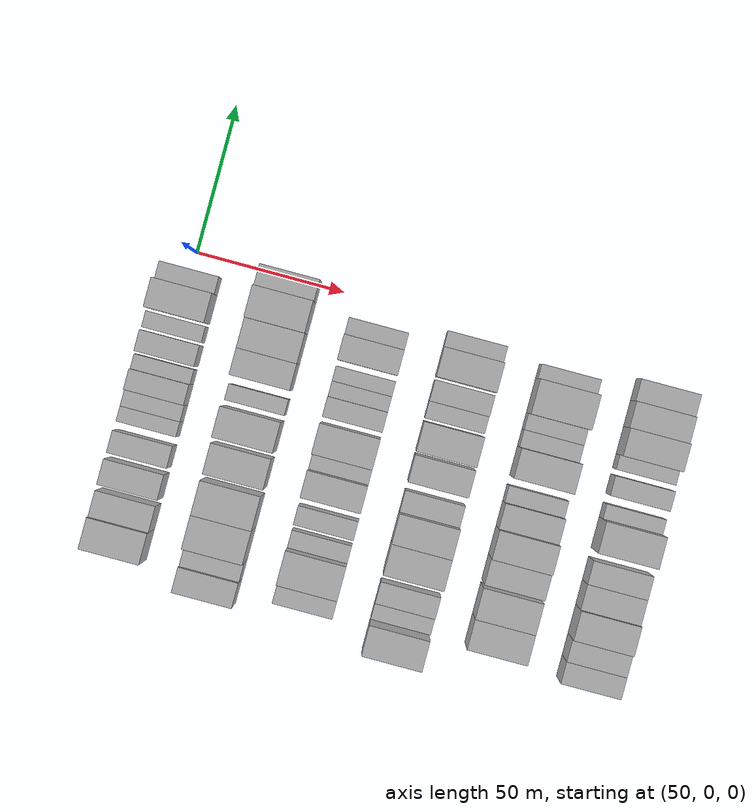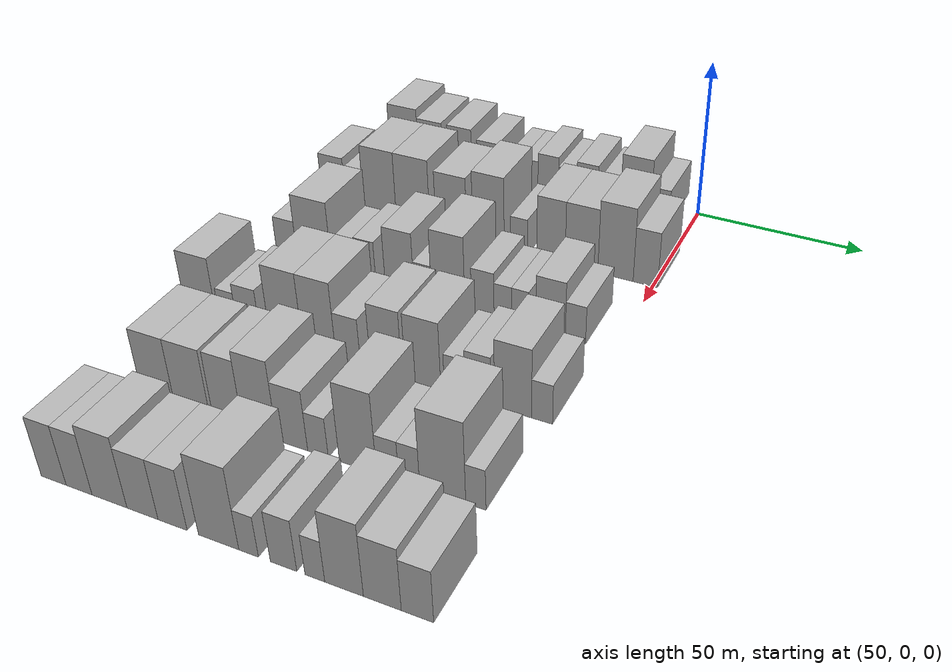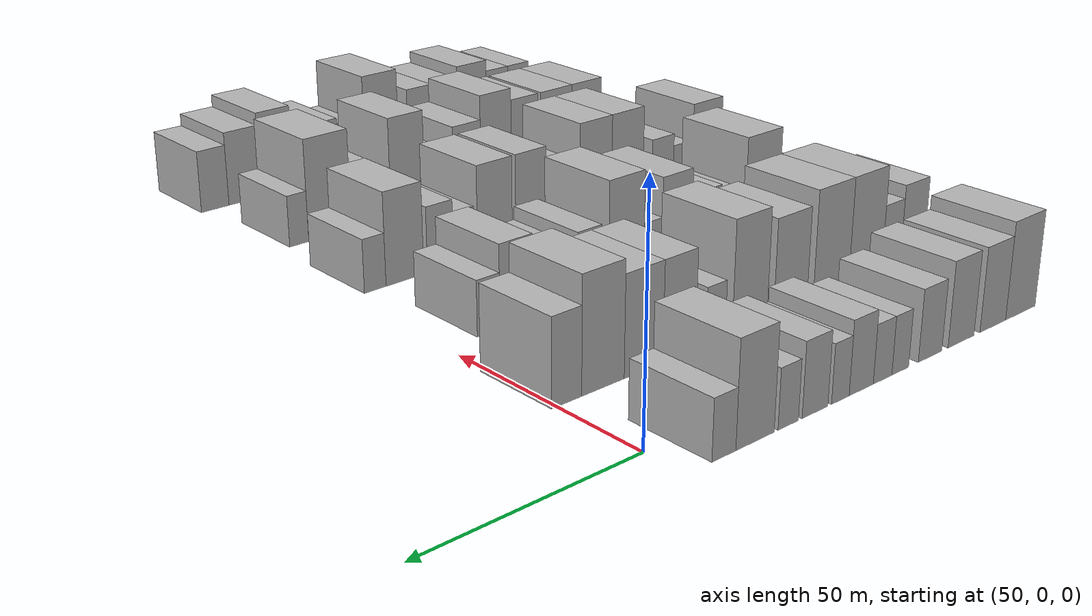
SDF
<sdf version="1.6">
 <world name="default">
  <model name="building_51">
   <static>1</static>
   <pose>50.0000 -96.4898 0 0.000000 0.000000 0.000000</pose>
   <link name="link">
    <pose>0 0 10.50 0 0 0</pose>
    <collision name="collision"><geometry><box><size>20.0000 10.4140 21.0000</size></box></geometry></collision>
    <visual name="visual">
     <cast_shadows>0</cast_shadows>
     <geometry><box><size>20.0000 10.4140 21.0000</size></box></geometry>
     <material>
      <script>
       <uri>model://HANNAS_wall/materials/scripts</uri>
       <uri>model://HANNAS_wall/materials/textures</uri>
       <name>vrc/HANNAS_wall</name>
      </script>
     </material>
    </visual>
   </link>
  </model>
  <model name="building_52">
   <static>1</static>
   <pose>50.0000 -86.9048 0 0.000000 0.000000 0.000000</pose>
   <link name="link">
    <pose>0 0 9.00 0 0 0</pose>
    <collision name="collision"><geometry><box><size>20.0000 8.7562 18.0000</size></box></geometry></collision>
    <visual name="visual">
     <cast_shadows>0</cast_shadows>
     <geometry><box><size>20.0000 8.7562 18.0000</size></box></geometry>
     <material>
      <script>
       <uri>model://HANNAS_wall/materials/scripts</uri>
       <uri>model://HANNAS_wall/materials/textures</uri>
       <name>vrc/HANNAS_wall</name>
      </script>
     </material>
    </visual>
   </link>
  </model>
  <model name="building_53">
   <static>1</static>
   <pose>50.0000 -76.2891 0 0.000000 0.000000 0.000000</pose>
   <link name="link">
    <pose>0 0 9.00 0 0 0</pose>
    <collision name="collision"><geometry><box><size>20.0000 8.4752 18.0000</size></box></geometry></collision>
    <visual name="visual">
     <cast_shadows>0</cast_shadows>
     <geometry><box><size>20.0000 8.4752 18.0000</size></box></geometry>
     <material>
      <script>
       <uri>model://HANNAS_wall/materials/scripts</uri>
       <uri>model://HANNAS_wall/materials/textures</uri>
       <name>vrc/HANNAS_wall</name>
      </script>
     </material>
    </visual>
   </link>
  </model>
  <model name="building_54">
   <static>1</static>
   <pose>50.0000 -66.3528 0 0.000000 0.000000 0.000000</pose>
   <link name="link">
    <pose>0 0 7.50 0 0 0</pose>
    <collision name="collision"><geometry><box><size>20.0000 7.3973 15.0000</size></box></geometry></collision>
    <visual name="visual">
     <cast_shadows>0</cast_shadows>
     <geometry><box><size>20.0000 7.3973 15.0000</size></box></geometry>
     <material>
      <script>
       <uri>model://HANNAS_wall/materials/scripts</uri>
       <uri>model://HANNAS_wall/materials/textures</uri>
       <name>vrc/HANNAS_wall</name>
      </script>
     </material>
    </visual>
   </link>
  </model>
  <model name="building_55">
   <static>1</static>
   <pose>50.0000 -57.1252 0 0.000000 0.000000 0.000000</pose>
   <link name="link">
    <pose>0 0 6.00 0 0 0</pose>
    <collision name="collision"><geometry><box><size>20.0000 5.0579 12.0000</size></box></geometry></collision>
    <visual name="visual">
     <cast_shadows>0</cast_shadows>
     <geometry><box><size>20.0000 5.0579 12.0000</size></box></geometry>
     <material>
      <script>
       <uri>model://HANNAS_wall/materials/scripts</uri>
       <uri>model://HANNAS_wall/materials/textures</uri>
       <name>vrc/HANNAS_wall</name>
      </script>
     </material>
    </visual>
   </link>
  </model>
  <model name="building_56">
   <static>1</static>
   <pose>50.0000 -51.8341 0 0.000000 0.000000 0.000000</pose>
   <link name="link">
    <pose>0 0 6.00 0 0 0</pose>
    <collision name="collision"><geometry><box><size>20.0000 5.5243 12.0000</size></box></geometry></collision>
    <visual name="visual">
     <cast_shadows>0</cast_shadows>
     <geometry><box><size>20.0000 5.5243 12.0000</size></box></geometry>
     <material>
      <script>
       <uri>model://HANNAS_wall/materials/scripts</uri>
       <uri>model://HANNAS_wall/materials/textures</uri>
       <name>vrc/HANNAS_wall</name>
      </script>
     </material>
    </visual>
   </link>
  </model>
  <model name="building_57">
   <static>1</static>
   <pose>50.0000 -45.5950 0 0.000000 0.000000 0.000000</pose>
   <link name="link">
    <pose>0 0 7.50 0 0 0</pose>
    <collision name="collision"><geometry><box><size>20.0000 6.9540 15.0000</size></box></geometry></collision>
    <visual name="visual">
     <cast_shadows>0</cast_shadows>
     <geometry><box><size>20.0000 6.9540 15.0000</size></box></geometry>
     <material>
      <script>
       <uri>model://HANNAS_wall/materials/scripts</uri>
       <uri>model://HANNAS_wall/materials/textures</uri>
       <name>vrc/HANNAS_wall</name>
      </script>
     </material>
    </visual>
   </link>
  </model>
  <model name="building_58">
   <static>1</static>
   <pose>50.0000 -39.6322 0 0.000000 0.000000 0.000000</pose>
   <link name="link">
    <pose>0 0 6.00 0 0 0</pose>
    <collision name="collision"><geometry><box><size>20.0000 4.9714 12.0000</size></box></geometry></collision>
    <visual name="visual">
     <cast_shadows>0</cast_shadows>
     <geometry><box><size>20.0000 4.9714 12.0000</size></box></geometry>
     <material>
      <script>
       <uri>model://HANNAS_wall/materials/scripts</uri>
       <uri>model://HANNAS_wall/materials/textures</uri>
       <name>vrc/HANNAS_wall</name>
      </script>
     </material>
    </visual>
   </link>
  </model>
  <model name="building_59">
   <static>1</static>
   <pose>50.0000 -32.6266 0 0.000000 0.000000 0.000000</pose>
   <link name="link">
    <pose>0 0 7.50 0 0 0</pose>
    <collision name="collision"><geometry><box><size>20.0000 7.0398 15.0000</size></box></geometry></collision>
    <visual name="visual">
     <cast_shadows>0</cast_shadows>
     <geometry><box><size>20.0000 7.0398 15.0000</size></box></geometry>
     <material>
      <script>
       <uri>model://HANNAS_wall/materials/scripts</uri>
       <uri>model://HANNAS_wall/materials/textures</uri>
       <name>vrc/HANNAS_wall</name>
      </script>
     </material>
    </visual>
   </link>
  </model>
  <model name="building_60">
   <static>1</static>
   <pose>50.0000 -25.4081 0 0.000000 0.000000 0.000000</pose>
   <link name="link">
    <pose>0 0 6.00 0 0 0</pose>
    <collision name="collision"><geometry><box><size>20.0000 5.3972 12.0000</size></box></geometry></collision>
    <visual name="visual">
     <cast_shadows>0</cast_shadows>
     <geometry><box><size>20.0000 5.3972 12.0000</size></box></geometry>
     <material>
      <script>
       <uri>model://HANNAS_wall/materials/scripts</uri>
       <uri>model://HANNAS_wall/materials/textures</uri>
       <name>vrc/HANNAS_wall</name>
      </script>
     </material>
    </visual>
   </link>
  </model>
  <model name="building_61">
   <static>1</static>
   <pose>50.0000 -16.8355 0 0.000000 0.000000 0.000000</pose>
   <link name="link">
    <pose>0 0 10.50 0 0 0</pose>
    <collision name="collision"><geometry><box><size>20.0000 9.7480 21.0000</size></box></geometry></collision>
    <visual name="visual">
     <cast_shadows>0</cast_shadows>
     <geometry><box><size>20.0000 9.7480 21.0000</size></box></geometry>
     <material>
      <script>
       <uri>model://HANNAS_wall/materials/scripts</uri>
       <uri>model://HANNAS_wall/materials/textures</uri>
       <name>vrc/HANNAS_wall</name>
      </script>
     </material>
    </visual>
   </link>
  </model>
  <model name="building_62">
   <static>1</static>
   <pose>50.0000 -9.0135 0 0.000000 0.000000 0.000000</pose>
   <link name="link">
    <pose>0 0 6.00 0 0 0</pose>
    <collision name="collision"><geometry><box><size>20.0000 5.8960 12.0000</size></box></geometry></collision>
    <visual name="visual">
     <cast_shadows>0</cast_shadows>
     <geometry><box><size>20.0000 5.8960 12.0000</size></box></geometry>
     <material>
      <script>
       <uri>model://HANNAS_wall/materials/scripts</uri>
       <uri>model://HANNAS_wall/materials/textures</uri>
       <name>vrc/HANNAS_wall</name>
      </script>
     </material>
    </visual>
   </link>
  </model>
  <model name="building_173">
   <static>1</static>
   <pose>82.0000 -103.5745 0 0.000000 0.000000 0.000000</pose>
   <link name="link">
    <pose>0 0 9.00 0 0 0</pose>
    <collision name="collision"><geometry><box><size>20.0000 8.4247 18.0000</size></box></geometry></collision>
    <visual name="visual">
     <cast_shadows>0</cast_shadows>
     <geometry><box><size>20.0000 8.4247 18.0000</size></box></geometry>
     <material>
      <script>
       <uri>model://HANNAS_wall/materials/scripts</uri>
       <uri>model://HANNAS_wall/materials/textures</uri>
       <name>vrc/HANNAS_wall</name>
      </script>
     </material>
    </visual>
   </link>
  </model>
  <model name="building_174">
   <static>1</static>
   <pose>82.0000 -96.1403 0 0.000000 0.000000 0.000000</pose>
   <link name="link">
    <pose>0 0 7.50 0 0 0</pose>
    <collision name="collision"><geometry><box><size>20.0000 6.4439 15.0000</size></box></geometry></collision>
    <visual name="visual">
     <cast_shadows>0</cast_shadows>
     <geometry><box><size>20.0000 6.4439 15.0000</size></box></geometry>
     <material>
      <script>
       <uri>model://HANNAS_wall/materials/scripts</uri>
       <uri>model://HANNAS_wall/materials/textures</uri>
       <name>vrc/HANNAS_wall</name>
      </script>
     </material>
    </visual>
   </link>
  </model>
  <model name="building_175">
   <static>1</static>
   <pose>82.0000 -87.3493 0 0.000000 0.000000 0.000000</pose>
   <link name="link">
    <pose>0 0 12.00 0 0 0</pose>
    <collision name="collision"><geometry><box><size>20.0000 11.1382 24.0000</size></box></geometry></collision>
    <visual name="visual">
     <cast_shadows>0</cast_shadows>
     <geometry><box><size>20.0000 11.1382 24.0000</size></box></geometry>
     <material>
      <script>
       <uri>model://HANNAS_wall/materials/scripts</uri>
       <uri>model://HANNAS_wall/materials/textures</uri>
       <name>vrc/HANNAS_wall</name>
      </script>
     </material>
    </visual>
   </link>
  </model>
  <model name="building_176">
   <static>1</static>
   <pose>82.0000 -76.0721 0 0.000000 0.000000 0.000000</pose>
   <link name="link">
    <pose>0 0 12.00 0 0 0</pose>
    <collision name="collision"><geometry><box><size>20.0000 11.4161 24.0000</size></box></geometry></collision>
    <visual name="visual">
     <cast_shadows>0</cast_shadows>
     <geometry><box><size>20.0000 11.4161 24.0000</size></box></geometry>
     <material>
      <script>
       <uri>model://HANNAS_wall/materials/scripts</uri>
       <uri>model://HANNAS_wall/materials/textures</uri>
       <name>vrc/HANNAS_wall</name>
      </script>
     </material>
    </visual>
   </link>
  </model>
  <model name="building_177">
   <static>1</static>
   <pose>82.0000 -63.2451 0 0.000000 0.000000 0.000000</pose>
   <link name="link">
    <pose>0 0 10.50 0 0 0</pose>
    <collision name="collision"><geometry><box><size>20.0000 10.2379 21.0000</size></box></geometry></collision>
    <visual name="visual">
     <cast_shadows>0</cast_shadows>
     <geometry><box><size>20.0000 10.2379 21.0000</size></box></geometry>
     <material>
      <script>
       <uri>model://HANNAS_wall/materials/scripts</uri>
       <uri>model://HANNAS_wall/materials/textures</uri>
       <name>vrc/HANNAS_wall</name>
      </script>
     </material>
    </visual>
   </link>
  </model>
  <model name="building_178">
   <static>1</static>
   <pose>82.0000 -51.0236 0 0.000000 0.000000 0.000000</pose>
   <link name="link">
    <pose>0 0 12.00 0 0 0</pose>
    <collision name="collision"><geometry><box><size>20.0000 10.2051 24.0000</size></box></geometry></collision>
    <visual name="visual">
     <cast_shadows>0</cast_shadows>
     <geometry><box><size>20.0000 10.2051 24.0000</size></box></geometry>
     <material>
      <script>
       <uri>model://HANNAS_wall/materials/scripts</uri>
       <uri>model://HANNAS_wall/materials/textures</uri>
       <name>vrc/HANNAS_wall</name>
      </script>
     </material>
    </visual>
   </link>
  </model>
  <model name="building_179">
   <static>1</static>
   <pose>82.0000 -41.2216 0 0.000000 0.000000 0.000000</pose>
   <link name="link">
    <pose>0 0 6.00 0 0 0</pose>
    <collision name="collision"><geometry><box><size>20.0000 5.3988 12.0000</size></box></geometry></collision>
    <visual name="visual">
     <cast_shadows>0</cast_shadows>
     <geometry><box><size>20.0000 5.3988 12.0000</size></box></geometry>
     <material>
      <script>
       <uri>model://HANNAS_wall/materials/scripts</uri>
       <uri>model://HANNAS_wall/materials/textures</uri>
       <name>vrc/HANNAS_wall</name>
      </script>
     </material>
    </visual>
   </link>
  </model>
  <model name="building_180">
   <static>1</static>
   <pose>82.0000 -31.0998 0 0.000000 0.000000 0.000000</pose>
   <link name="link">
    <pose>0 0 10.50 0 0 0</pose>
    <collision name="collision"><geometry><box><size>20.0000 8.8448 21.0000</size></box></geometry></collision>
    <visual name="visual">
     <cast_shadows>0</cast_shadows>
     <geometry><box><size>20.0000 8.8448 21.0000</size></box></geometry>
     <material>
      <script>
       <uri>model://HANNAS_wall/materials/scripts</uri>
       <uri>model://HANNAS_wall/materials/textures</uri>
       <name>vrc/HANNAS_wall</name>
      </script>
     </material>
    </visual>
   </link>
  </model>
  <model name="building_181">
   <static>1</static>
   <pose>82.0000 -21.6434 0 0.000000 0.000000 0.000000</pose>
   <link name="link">
    <pose>0 0 10.50 0 0 0</pose>
    <collision name="collision"><geometry><box><size>20.0000 10.0680 21.0000</size></box></geometry></collision>
    <visual name="visual">
     <cast_shadows>0</cast_shadows>
     <geometry><box><size>20.0000 10.0680 21.0000</size></box></geometry>
     <material>
      <script>
       <uri>model://HANNAS_wall/materials/scripts</uri>
       <uri>model://HANNAS_wall/materials/textures</uri>
       <name>vrc/HANNAS_wall</name>
      </script>
     </material>
    </visual>
   </link>
  </model>
  <model name="building_182">
   <static>1</static>
   <pose>82.0000 -11.2924 0 0.000000 0.000000 0.000000</pose>
   <link name="link">
    <pose>0 0 12.00 0 0 0</pose>
    <collision name="collision"><geometry><box><size>20.0000 10.6341 24.0000</size></box></geometry></collision>
    <visual name="visual">
     <cast_shadows>0</cast_shadows>
     <geometry><box><size>20.0000 10.6341 24.0000</size></box></geometry>
     <material>
      <script>
       <uri>model://HANNAS_wall/materials/scripts</uri>
       <uri>model://HANNAS_wall/materials/textures</uri>
       <name>vrc/HANNAS_wall</name>
      </script>
     </material>
    </visual>
   </link>
  </model>
  <model name="building_183">
   <static>1</static>
   <pose>82.0000 -2.3424 0 0.000000 0.000000 0.000000</pose>
   <link name="link">
    <pose>0 0 9.00 0 0 0</pose>
    <collision name="collision"><geometry><box><size>20.0000 7.2660 18.0000</size></box></geometry></collision>
    <visual name="visual">
     <cast_shadows>0</cast_shadows>
     <geometry><box><size>20.0000 7.2660 18.0000</size></box></geometry>
     <material>
      <script>
       <uri>model://HANNAS_wall/materials/scripts</uri>
       <uri>model://HANNAS_wall/materials/textures</uri>
       <name>vrc/HANNAS_wall</name>
      </script>
     </material>
    </visual>
   </link>
  </model>
  <model name="building_292">
   <static>1</static>
   <pose>114.0000 -99.6479 0 0.000000 0.000000 0.000000</pose>
   <link name="link">
    <pose>0 0 7.50 0 0 0</pose>
    <collision name="collision"><geometry><box><size>20.0000 6.8686 15.0000</size></box></geometry></collision>
    <visual name="visual">
     <cast_shadows>0</cast_shadows>
     <geometry><box><size>20.0000 6.8686 15.0000</size></box></geometry>
     <material>
      <script>
       <uri>model://HANNAS_wall/materials/scripts</uri>
       <uri>model://HANNAS_wall/materials/textures</uri>
       <name>vrc/HANNAS_wall</name>
      </script>
     </material>
    </visual>
   </link>
  </model>
  <model name="building_293">
   <static>1</static>
   <pose>114.0000 -90.5024 0 0.000000 0.000000 0.000000</pose>
   <link name="link">
    <pose>0 0 12.00 0 0 0</pose>
    <collision name="collision"><geometry><box><size>20.0000 11.4224 24.0000</size></box></geometry></collision>
    <visual name="visual">
     <cast_shadows>0</cast_shadows>
     <geometry><box><size>20.0000 11.4224 24.0000</size></box></geometry>
     <material>
      <script>
       <uri>model://HANNAS_wall/materials/scripts</uri>
       <uri>model://HANNAS_wall/materials/textures</uri>
       <name>vrc/HANNAS_wall</name>
      </script>
     </material>
    </visual>
   </link>
  </model>
  <model name="building_294">
   <static>1</static>
   <pose>114.0000 -81.8430 0 0.000000 0.000000 0.000000</pose>
   <link name="link">
    <pose>0 0 6.00 0 0 0</pose>
    <collision name="collision"><geometry><box><size>20.0000 5.8963 12.0000</size></box></geometry></collision>
    <visual name="visual">
     <cast_shadows>0</cast_shadows>
     <geometry><box><size>20.0000 5.8963 12.0000</size></box></geometry>
     <material>
      <script>
       <uri>model://HANNAS_wall/materials/scripts</uri>
       <uri>model://HANNAS_wall/materials/textures</uri>
       <name>vrc/HANNAS_wall</name>
      </script>
     </material>
    </visual>
   </link>
  </model>
  <model name="building_295">
   <static>1</static>
   <pose>114.0000 -73.7252 0 0.000000 0.000000 0.000000</pose>
   <link name="link">
    <pose>0 0 7.50 0 0 0</pose>
    <collision name="collision"><geometry><box><size>20.0000 6.3393 15.0000</size></box></geometry></collision>
    <visual name="visual">
     <cast_shadows>0</cast_shadows>
     <geometry><box><size>20.0000 6.3393 15.0000</size></box></geometry>
     <material>
      <script>
       <uri>model://HANNAS_wall/materials/scripts</uri>
       <uri>model://HANNAS_wall/materials/textures</uri>
       <name>vrc/HANNAS_wall</name>
      </script>
     </material>
    </visual>
   </link>
  </model>
  <model name="building_296">
   <static>1</static>
   <pose>114.0000 -63.0378 0 0.000000 0.000000 0.000000</pose>
   <link name="link">
    <pose>0 0 10.50 0 0 0</pose>
    <collision name="collision"><geometry><box><size>20.0000 9.0355 21.0000</size></box></geometry></collision>
    <visual name="visual">
     <cast_shadows>0</cast_shadows>
     <geometry><box><size>20.0000 9.0355 21.0000</size></box></geometry>
     <material>
      <script>
       <uri>model://HANNAS_wall/materials/scripts</uri>
       <uri>model://HANNAS_wall/materials/textures</uri>
       <name>vrc/HANNAS_wall</name>
      </script>
     </material>
    </visual>
   </link>
  </model>
  <model name="building_297">
   <static>1</static>
   <pose>114.0000 -55.7932 0 0.000000 0.000000 0.000000</pose>
   <link name="link">
    <pose>0 0 6.00 0 0 0</pose>
    <collision name="collision"><geometry><box><size>20.0000 5.4538 12.0000</size></box></geometry></collision>
    <visual name="visual">
     <cast_shadows>0</cast_shadows>
     <geometry><box><size>20.0000 5.4538 12.0000</size></box></geometry>
     <material>
      <script>
       <uri>model://HANNAS_wall/materials/scripts</uri>
       <uri>model://HANNAS_wall/materials/textures</uri>
       <name>vrc/HANNAS_wall</name>
      </script>
     </material>
    </visual>
   </link>
  </model>
  <model name="building_298">
   <static>1</static>
   <pose>114.0000 -47.9770 0 0.000000 0.000000 0.000000</pose>
   <link name="link">
    <pose>0 0 12.00 0 0 0</pose>
    <collision name="collision"><geometry><box><size>20.0000 10.1784 24.0000</size></box></geometry></collision>
    <visual name="visual">
     <cast_shadows>0</cast_shadows>
     <geometry><box><size>20.0000 10.1784 24.0000</size></box></geometry>
     <material>
      <script>
       <uri>model://HANNAS_wall/materials/scripts</uri>
       <uri>model://HANNAS_wall/materials/textures</uri>
       <name>vrc/HANNAS_wall</name>
      </script>
     </material>
    </visual>
   </link>
  </model>
  <model name="building_299">
   <static>1</static>
   <pose>114.0000 -37.5311 0 0.000000 0.000000 0.000000</pose>
   <link name="link">
    <pose>0 0 7.50 0 0 0</pose>
    <collision name="collision"><geometry><box><size>20.0000 6.7135 15.0000</size></box></geometry></collision>
    <visual name="visual">
     <cast_shadows>0</cast_shadows>
     <geometry><box><size>20.0000 6.7135 15.0000</size></box></geometry>
     <material>
      <script>
       <uri>model://HANNAS_wall/materials/scripts</uri>
       <uri>model://HANNAS_wall/materials/textures</uri>
       <name>vrc/HANNAS_wall</name>
      </script>
     </material>
    </visual>
   </link>
  </model>
  <model name="building_300">
   <static>1</static>
   <pose>114.0000 -31.5909 0 0.000000 0.000000 0.000000</pose>
   <link name="link">
    <pose>0 0 6.00 0 0 0</pose>
    <collision name="collision"><geometry><box><size>20.0000 5.1669 12.0000</size></box></geometry></collision>
    <visual name="visual">
     <cast_shadows>0</cast_shadows>
     <geometry><box><size>20.0000 5.1669 12.0000</size></box></geometry>
     <material>
      <script>
       <uri>model://HANNAS_wall/materials/scripts</uri>
       <uri>model://HANNAS_wall/materials/textures</uri>
       <name>vrc/HANNAS_wall</name>
      </script>
     </material>
    </visual>
   </link>
  </model>
  <model name="building_301">
   <static>1</static>
   <pose>114.0000 -26.4887 0 0.000000 0.000000 0.000000</pose>
   <link name="link">
    <pose>0 0 6.00 0 0 0</pose>
    <collision name="collision"><geometry><box><size>20.0000 5.0374 12.0000</size></box></geometry></collision>
    <visual name="visual">
     <cast_shadows>0</cast_shadows>
     <geometry><box><size>20.0000 5.0374 12.0000</size></box></geometry>
     <material>
      <script>
       <uri>model://HANNAS_wall/materials/scripts</uri>
       <uri>model://HANNAS_wall/materials/textures</uri>
       <name>vrc/HANNAS_wall</name>
      </script>
     </material>
    </visual>
   </link>
  </model>
  <model name="building_302">
   <static>1</static>
   <pose>114.0000 -17.7199 0 0.000000 0.000000 0.000000</pose>
   <link name="link">
    <pose>0 0 9.00 0 0 0</pose>
    <collision name="collision"><geometry><box><size>20.0000 8.5003 18.0000</size></box></geometry></collision>
    <visual name="visual">
     <cast_shadows>0</cast_shadows>
     <geometry><box><size>20.0000 8.5003 18.0000</size></box></geometry>
     <material>
      <script>
       <uri>model://HANNAS_wall/materials/scripts</uri>
       <uri>model://HANNAS_wall/materials/textures</uri>
       <name>vrc/HANNAS_wall</name>
      </script>
     </material>
    </visual>
   </link>
  </model>
  <model name="building_303">
   <static>1</static>
   <pose>114.0000 -10.6014 0 0.000000 0.000000 0.000000</pose>
   <link name="link">
    <pose>0 0 6.00 0 0 0</pose>
    <collision name="collision"><geometry><box><size>20.0000 5.7367 12.0000</size></box></geometry></collision>
    <visual name="visual">
     <cast_shadows>0</cast_shadows>
     <geometry><box><size>20.0000 5.7367 12.0000</size></box></geometry>
     <material>
      <script>
       <uri>model://HANNAS_wall/materials/scripts</uri>
       <uri>model://HANNAS_wall/materials/textures</uri>
       <name>vrc/HANNAS_wall</name>
      </script>
     </material>
    </visual>
   </link>
  </model>
  <model name="building_403">
   <static>1</static>
   <pose>146.0000 -106.1804 0 0.000000 0.000000 0.000000</pose>
   <link name="link">
    <pose>0 0 10.50 0 0 0</pose>
    <collision name="collision"><geometry><box><size>20.0000 10.1394 21.0000</size></box></geometry></collision>
    <visual name="visual">
     <cast_shadows>0</cast_shadows>
     <geometry><box><size>20.0000 10.1394 21.0000</size></box></geometry>
     <material>
      <script>
       <uri>model://HANNAS_wall/materials/scripts</uri>
       <uri>model://HANNAS_wall/materials/textures</uri>
       <name>vrc/HANNAS_wall</name>
      </script>
     </material>
    </visual>
   </link>
  </model>
  <model name="building_404">
   <static>1</static>
   <pose>146.0000 -97.3187 0 0.000000 0.000000 0.000000</pose>
   <link name="link">
    <pose>0 0 6.00 0 0 0</pose>
    <collision name="collision"><geometry><box><size>20.0000 5.5841 12.0000</size></box></geometry></collision>
    <visual name="visual">
     <cast_shadows>0</cast_shadows>
     <geometry><box><size>20.0000 5.5841 12.0000</size></box></geometry>
     <material>
      <script>
       <uri>model://HANNAS_wall/materials/scripts</uri>
       <uri>model://HANNAS_wall/materials/textures</uri>
       <name>vrc/HANNAS_wall</name>
      </script>
     </material>
    </visual>
   </link>
  </model>
  <model name="building_405">
   <static>1</static>
   <pose>146.0000 -90.9195 0 0.000000 0.000000 0.000000</pose>
   <link name="link">
    <pose>0 0 7.50 0 0 0</pose>
    <collision name="collision"><geometry><box><size>20.0000 7.2144 15.0000</size></box></geometry></collision>
    <visual name="visual">
     <cast_shadows>0</cast_shadows>
     <geometry><box><size>20.0000 7.2144 15.0000</size></box></geometry>
     <material>
      <script>
       <uri>model://HANNAS_wall/materials/scripts</uri>
       <uri>model://HANNAS_wall/materials/textures</uri>
       <name>vrc/HANNAS_wall</name>
      </script>
     </material>
    </visual>
   </link>
  </model>
  <model name="building_406">
   <static>1</static>
   <pose>146.0000 -79.2008 0 0.000000 0.000000 0.000000</pose>
   <link name="link">
    <pose>0 0 12.00 0 0 0</pose>
    <collision name="collision"><geometry><box><size>20.0000 10.2230 24.0000</size></box></geometry></collision>
    <visual name="visual">
     <cast_shadows>0</cast_shadows>
     <geometry><box><size>20.0000 10.2230 24.0000</size></box></geometry>
     <material>
      <script>
       <uri>model://HANNAS_wall/materials/scripts</uri>
       <uri>model://HANNAS_wall/materials/textures</uri>
       <name>vrc/HANNAS_wall</name>
      </script>
     </material>
    </visual>
   </link>
  </model>
  <model name="building_407">
   <static>1</static>
   <pose>146.0000 -69.0934 0 0.000000 0.000000 0.000000</pose>
   <link name="link">
    <pose>0 0 12.00 0 0 0</pose>
    <collision name="collision"><geometry><box><size>20.0000 9.9920 24.0000</size></box></geometry></collision>
    <visual name="visual">
     <cast_shadows>0</cast_shadows>
     <geometry><box><size>20.0000 9.9920 24.0000</size></box></geometry>
     <material>
      <script>
       <uri>model://HANNAS_wall/materials/scripts</uri>
       <uri>model://HANNAS_wall/materials/textures</uri>
       <name>vrc/HANNAS_wall</name>
      </script>
     </material>
    </visual>
   </link>
  </model>
  <model name="building_408">
   <static>1</static>
   <pose>146.0000 -60.4698 0 0.000000 0.000000 0.000000</pose>
   <link name="link">
    <pose>0 0 7.50 0 0 0</pose>
    <collision name="collision"><geometry><box><size>20.0000 7.2551 15.0000</size></box></geometry></collision>
    <visual name="visual">
     <cast_shadows>0</cast_shadows>
     <geometry><box><size>20.0000 7.2551 15.0000</size></box></geometry>
     <material>
      <script>
       <uri>model://HANNAS_wall/materials/scripts</uri>
       <uri>model://HANNAS_wall/materials/textures</uri>
       <name>vrc/HANNAS_wall</name>
      </script>
     </material>
    </visual>
   </link>
  </model>
  <model name="building_409">
   <static>1</static>
   <pose>146.0000 -49.3062 0 0.000000 0.000000 0.000000</pose>
   <link name="link">
    <pose>0 0 10.50 0 0 0</pose>
    <collision name="collision"><geometry><box><size>20.0000 9.0721 21.0000</size></box></geometry></collision>
    <visual name="visual">
     <cast_shadows>0</cast_shadows>
     <geometry><box><size>20.0000 9.0721 21.0000</size></box></geometry>
     <material>
      <script>
       <uri>model://HANNAS_wall/materials/scripts</uri>
       <uri>model://HANNAS_wall/materials/textures</uri>
       <name>vrc/HANNAS_wall</name>
      </script>
     </material>
    </visual>
   </link>
  </model>
  <model name="building_410">
   <static>1</static>
   <pose>146.0000 -38.7972 0 0.000000 0.000000 0.000000</pose>
   <link name="link">
    <pose>0 0 10.50 0 0 0</pose>
    <collision name="collision"><geometry><box><size>20.0000 9.9458 21.0000</size></box></geometry></collision>
    <visual name="visual">
     <cast_shadows>0</cast_shadows>
     <geometry><box><size>20.0000 9.9458 21.0000</size></box></geometry>
     <material>
      <script>
       <uri>model://HANNAS_wall/materials/scripts</uri>
       <uri>model://HANNAS_wall/materials/textures</uri>
       <name>vrc/HANNAS_wall</name>
      </script>
     </material>
    </visual>
   </link>
  </model>
  <model name="building_411">
   <static>1</static>
   <pose>146.0000 -29.9547 0 0.000000 0.000000 0.000000</pose>
   <link name="link">
    <pose>0 0 6.00 0 0 0</pose>
    <collision name="collision"><geometry><box><size>20.0000 5.7392 12.0000</size></box></geometry></collision>
    <visual name="visual">
     <cast_shadows>0</cast_shadows>
     <geometry><box><size>20.0000 5.7392 12.0000</size></box></geometry>
     <material>
      <script>
       <uri>model://HANNAS_wall/materials/scripts</uri>
       <uri>model://HANNAS_wall/materials/textures</uri>
       <name>vrc/HANNAS_wall</name>
      </script>
     </material>
    </visual>
   </link>
  </model>
  <model name="building_412">
   <static>1</static>
   <pose>146.0000 -23.5561 0 0.000000 0.000000 0.000000</pose>
   <link name="link">
    <pose>0 0 7.50 0 0 0</pose>
    <collision name="collision"><geometry><box><size>20.0000 7.0578 15.0000</size></box></geometry></collision>
    <visual name="visual">
     <cast_shadows>0</cast_shadows>
     <geometry><box><size>20.0000 7.0578 15.0000</size></box></geometry>
     <material>
      <script>
       <uri>model://HANNAS_wall/materials/scripts</uri>
       <uri>model://HANNAS_wall/materials/textures</uri>
       <name>vrc/HANNAS_wall</name>
      </script>
     </material>
    </visual>
   </link>
  </model>
  <model name="building_413">
   <static>1</static>
   <pose>146.0000 -14.0826 0 0.000000 0.000000 0.000000</pose>
   <link name="link">
    <pose>0 0 10.50 0 0 0</pose>
    <collision name="collision"><geometry><box><size>20.0000 9.8893 21.0000</size></box></geometry></collision>
    <visual name="visual">
     <cast_shadows>0</cast_shadows>
     <geometry><box><size>20.0000 9.8893 21.0000</size></box></geometry>
     <material>
      <script>
       <uri>model://HANNAS_wall/materials/scripts</uri>
       <uri>model://HANNAS_wall/materials/textures</uri>
       <name>vrc/HANNAS_wall</name>
      </script>
     </material>
    </visual>
   </link>
  </model>
  <model name="building_414">
   <static>1</static>
   <pose>146.0000 -6.3796 0 0.000000 0.000000 0.000000</pose>
   <link name="link">
    <pose>0 0 6.00 0 0 0</pose>
    <collision name="collision"><geometry><box><size>20.0000 5.5167 12.0000</size></box></geometry></collision>
    <visual name="visual">
     <cast_shadows>0</cast_shadows>
     <geometry><box><size>20.0000 5.5167 12.0000</size></box></geometry>
     <material>
      <script>
       <uri>model://HANNAS_wall/materials/scripts</uri>
       <uri>model://HANNAS_wall/materials/textures</uri>
       <name>vrc/HANNAS_wall</name>
      </script>
     </material>
    </visual>
   </link>
  </model>
  <model name="building_524">
   <static>1</static>
   <pose>178.0000 -95.5622 0 0.000000 0.000000 0.000000</pose>
   <link name="link">
    <pose>0 0 10.50 0 0 0</pose>
    <collision name="collision"><geometry><box><size>20.0000 10.0274 21.0000</size></box></geometry></collision>
    <visual name="visual">
     <cast_shadows>0</cast_shadows>
     <geometry><box><size>20.0000 10.0274 21.0000</size></box></geometry>
     <material>
      <script>
       <uri>model://HANNAS_wall/materials/scripts</uri>
       <uri>model://HANNAS_wall/materials/textures</uri>
       <name>vrc/HANNAS_wall</name>
      </script>
     </material>
    </visual>
   </link>
  </model>
  <model name="building_525">
   <static>1</static>
   <pose>178.0000 -85.3621 0 0.000000 0.000000 0.000000</pose>
   <link name="link">
    <pose>0 0 10.50 0 0 0</pose>
    <collision name="collision"><geometry><box><size>20.0000 10.3726 21.0000</size></box></geometry></collision>
    <visual name="visual">
     <cast_shadows>0</cast_shadows>
     <geometry><box><size>20.0000 10.3726 21.0000</size></box></geometry>
     <material>
      <script>
       <uri>model://HANNAS_wall/materials/scripts</uri>
       <uri>model://HANNAS_wall/materials/textures</uri>
       <name>vrc/HANNAS_wall</name>
      </script>
     </material>
    </visual>
   </link>
  </model>
  <model name="building_526">
   <static>1</static>
   <pose>178.0000 -74.8653 0 0.000000 0.000000 0.000000</pose>
   <link name="link">
    <pose>0 0 10.50 0 0 0</pose>
    <collision name="collision"><geometry><box><size>20.0000 8.6211 21.0000</size></box></geometry></collision>
    <visual name="visual">
     <cast_shadows>0</cast_shadows>
     <geometry><box><size>20.0000 8.6211 21.0000</size></box></geometry>
     <material>
      <script>
       <uri>model://HANNAS_wall/materials/scripts</uri>
       <uri>model://HANNAS_wall/materials/textures</uri>
       <name>vrc/HANNAS_wall</name>
      </script>
     </material>
    </visual>
   </link>
  </model>
  <model name="building_527">
   <static>1</static>
   <pose>178.0000 -65.7337 0 0.000000 0.000000 0.000000</pose>
   <link name="link">
    <pose>0 0 12.00 0 0 0</pose>
    <collision name="collision"><geometry><box><size>20.0000 9.6421 24.0000</size></box></geometry></collision>
    <visual name="visual">
     <cast_shadows>0</cast_shadows>
     <geometry><box><size>20.0000 9.6421 24.0000</size></box></geometry>
     <material>
      <script>
       <uri>model://HANNAS_wall/materials/scripts</uri>
       <uri>model://HANNAS_wall/materials/textures</uri>
       <name>vrc/HANNAS_wall</name>
      </script>
     </material>
    </visual>
   </link>
  </model>
  <model name="building_528">
   <static>1</static>
   <pose>178.0000 -56.6772 0 0.000000 0.000000 0.000000</pose>
   <link name="link">
    <pose>0 0 9.00 0 0 0</pose>
    <collision name="collision"><geometry><box><size>20.0000 8.4708 18.0000</size></box></geometry></collision>
    <visual name="visual">
     <cast_shadows>0</cast_shadows>
     <geometry><box><size>20.0000 8.4708 18.0000</size></box></geometry>
     <material>
      <script>
       <uri>model://HANNAS_wall/materials/scripts</uri>
       <uri>model://HANNAS_wall/materials/textures</uri>
       <name>vrc/HANNAS_wall</name>
      </script>
     </material>
    </visual>
   </link>
  </model>
  <model name="building_529">
   <static>1</static>
   <pose>178.0000 -49.6322 0 0.000000 0.000000 0.000000</pose>
   <link name="link">
    <pose>0 0 6.00 0 0 0</pose>
    <collision name="collision"><geometry><box><size>20.0000 5.6191 12.0000</size></box></geometry></collision>
    <visual name="visual">
     <cast_shadows>0</cast_shadows>
     <geometry><box><size>20.0000 5.6191 12.0000</size></box></geometry>
     <material>
      <script>
       <uri>model://HANNAS_wall/materials/scripts</uri>
       <uri>model://HANNAS_wall/materials/textures</uri>
       <name>vrc/HANNAS_wall</name>
      </script>
     </material>
    </visual>
   </link>
  </model>
  <model name="building_530">
   <static>1</static>
   <pose>178.0000 -38.8774 0 0.000000 0.000000 0.000000</pose>
   <link name="link">
    <pose>0 0 12.00 0 0 0</pose>
    <collision name="collision"><geometry><box><size>20.0000 9.8905 24.0000</size></box></geometry></collision>
    <visual name="visual">
     <cast_shadows>0</cast_shadows>
     <geometry><box><size>20.0000 9.8905 24.0000</size></box></geometry>
     <material>
      <script>
       <uri>model://HANNAS_wall/materials/scripts</uri>
       <uri>model://HANNAS_wall/materials/textures</uri>
       <name>vrc/HANNAS_wall</name>
      </script>
     </material>
    </visual>
   </link>
  </model>
  <model name="building_531">
   <static>1</static>
   <pose>178.0000 -31.0283 0 0.000000 0.000000 0.000000</pose>
   <link name="link">
    <pose>0 0 6.00 0 0 0</pose>
    <collision name="collision"><geometry><box><size>20.0000 5.8078 12.0000</size></box></geometry></collision>
    <visual name="visual">
     <cast_shadows>0</cast_shadows>
     <geometry><box><size>20.0000 5.8078 12.0000</size></box></geometry>
     <material>
      <script>
       <uri>model://HANNAS_wall/materials/scripts</uri>
       <uri>model://HANNAS_wall/materials/textures</uri>
       <name>vrc/HANNAS_wall</name>
      </script>
     </material>
    </visual>
   </link>
  </model>
  <model name="building_532">
   <static>1</static>
   <pose>178.0000 -25.4337 0 0.000000 0.000000 0.000000</pose>
   <link name="link">
    <pose>0 0 6.00 0 0 0</pose>
    <collision name="collision"><geometry><box><size>20.0000 5.3816 12.0000</size></box></geometry></collision>
    <visual name="visual">
     <cast_shadows>0</cast_shadows>
     <geometry><box><size>20.0000 5.3816 12.0000</size></box></geometry>
     <material>
      <script>
       <uri>model://HANNAS_wall/materials/scripts</uri>
       <uri>model://HANNAS_wall/materials/textures</uri>
       <name>vrc/HANNAS_wall</name>
      </script>
     </material>
    </visual>
   </link>
  </model>
  <model name="building_533">
   <static>1</static>
   <pose>178.0000 -16.9481 0 0.000000 0.000000 0.000000</pose>
   <link name="link">
    <pose>0 0 12.00 0 0 0</pose>
    <collision name="collision"><geometry><box><size>20.0000 11.5896 24.0000</size></box></geometry></collision>
    <visual name="visual">
     <cast_shadows>0</cast_shadows>
     <geometry><box><size>20.0000 11.5896 24.0000</size></box></geometry>
     <material>
      <script>
       <uri>model://HANNAS_wall/materials/scripts</uri>
       <uri>model://HANNAS_wall/materials/textures</uri>
       <name>vrc/HANNAS_wall</name>
      </script>
     </material>
    </visual>
   </link>
  </model>
  <model name="building_534">
   <static>1</static>
   <pose>178.0000 -8.6464 0 0.000000 0.000000 0.000000</pose>
   <link name="link">
    <pose>0 0 6.00 0 0 0</pose>
    <collision name="collision"><geometry><box><size>20.0000 5.0138 12.0000</size></box></geometry></collision>
    <visual name="visual">
     <cast_shadows>0</cast_shadows>
     <geometry><box><size>20.0000 5.0138 12.0000</size></box></geometry>
     <material>
      <script>
       <uri>model://HANNAS_wall/materials/scripts</uri>
       <uri>model://HANNAS_wall/materials/textures</uri>
       <name>vrc/HANNAS_wall</name>
      </script>
     </material>
    </visual>
   </link>
  </model>
  <model name="building_638">
   <static>1</static>
   <pose>210.0000 -99.9807 0 0.000000 0.000000 0.000000</pose>
   <link name="link">
    <pose>0 0 9.00 0 0 0</pose>
    <collision name="collision"><geometry><box><size>20.0000 7.2446 18.0000</size></box></geometry></collision>
    <visual name="visual">
     <cast_shadows>0</cast_shadows>
     <geometry><box><size>20.0000 7.2446 18.0000</size></box></geometry>
     <material>
      <script>
       <uri>model://HANNAS_wall/materials/scripts</uri>
       <uri>model://HANNAS_wall/materials/textures</uri>
       <name>vrc/HANNAS_wall</name>
      </script>
     </material>
    </visual>
   </link>
  </model>
  <model name="building_639">
   <static>1</static>
   <pose>210.0000 -92.6595 0 0.000000 0.000000 0.000000</pose>
   <link name="link">
    <pose>0 0 9.00 0 0 0</pose>
    <collision name="collision"><geometry><box><size>20.0000 7.3977 18.0000</size></box></geometry></collision>
    <visual name="visual">
     <cast_shadows>0</cast_shadows>
     <geometry><box><size>20.0000 7.3977 18.0000</size></box></geometry>
     <material>
      <script>
       <uri>model://HANNAS_wall/materials/scripts</uri>
       <uri>model://HANNAS_wall/materials/textures</uri>
       <name>vrc/HANNAS_wall</name>
      </script>
     </material>
    </visual>
   </link>
  </model>
  <model name="building_640">
   <static>1</static>
   <pose>210.0000 -84.0751 0 0.000000 0.000000 0.000000</pose>
   <link name="link">
    <pose>0 0 10.50 0 0 0</pose>
    <collision name="collision"><geometry><box><size>20.0000 9.7712 21.0000</size></box></geometry></collision>
    <visual name="visual">
     <cast_shadows>0</cast_shadows>
     <geometry><box><size>20.0000 9.7712 21.0000</size></box></geometry>
     <material>
      <script>
       <uri>model://HANNAS_wall/materials/scripts</uri>
       <uri>model://HANNAS_wall/materials/textures</uri>
       <name>vrc/HANNAS_wall</name>
      </script>
     </material>
    </visual>
   </link>
  </model>
  <model name="building_641">
   <static>1</static>
   <pose>210.0000 -74.9323 0 0.000000 0.000000 0.000000</pose>
   <link name="link">
    <pose>0 0 9.00 0 0 0</pose>
    <collision name="collision"><geometry><box><size>20.0000 8.5142 18.0000</size></box></geometry></collision>
    <visual name="visual">
     <cast_shadows>0</cast_shadows>
     <geometry><box><size>20.0000 8.5142 18.0000</size></box></geometry>
     <material>
      <script>
       <uri>model://HANNAS_wall/materials/scripts</uri>
       <uri>model://HANNAS_wall/materials/textures</uri>
       <name>vrc/HANNAS_wall</name>
      </script>
     </material>
    </visual>
   </link>
  </model>
  <model name="building_642">
   <static>1</static>
   <pose>210.0000 -66.7753 0 0.000000 0.000000 0.000000</pose>
   <link name="link">
    <pose>0 0 9.00 0 0 0</pose>
    <collision name="collision"><geometry><box><size>20.0000 7.7998 18.0000</size></box></geometry></collision>
    <visual name="visual">
     <cast_shadows>0</cast_shadows>
     <geometry><box><size>20.0000 7.7998 18.0000</size></box></geometry>
     <material>
      <script>
       <uri>model://HANNAS_wall/materials/scripts</uri>
       <uri>model://HANNAS_wall/materials/textures</uri>
       <name>vrc/HANNAS_wall</name>
      </script>
     </material>
    </visual>
   </link>
  </model>
  <model name="building_643">
   <static>1</static>
   <pose>210.0000 -54.6401 0 0.000000 0.000000 0.000000</pose>
   <link name="link">
    <pose>0 0 12.00 0 0 0</pose>
    <collision name="collision"><geometry><box><size>20.0000 10.4705 24.0000</size></box></geometry></collision>
    <visual name="visual">
     <cast_shadows>0</cast_shadows>
     <geometry><box><size>20.0000 10.4705 24.0000</size></box></geometry>
     <material>
      <script>
       <uri>model://HANNAS_wall/materials/scripts</uri>
       <uri>model://HANNAS_wall/materials/textures</uri>
       <name>vrc/HANNAS_wall</name>
      </script>
     </material>
    </visual>
   </link>
  </model>
  <model name="building_644">
   <static>1</static>
   <pose>210.0000 -46.9047 0 0.000000 0.000000 0.000000</pose>
   <link name="link">
    <pose>0 0 6.00 0 0 0</pose>
    <collision name="collision"><geometry><box><size>20.0000 5.0004 12.0000</size></box></geometry></collision>
    <visual name="visual">
     <cast_shadows>0</cast_shadows>
     <geometry><box><size>20.0000 5.0004 12.0000</size></box></geometry>
     <material>
      <script>
       <uri>model://HANNAS_wall/materials/scripts</uri>
       <uri>model://HANNAS_wall/materials/textures</uri>
       <name>vrc/HANNAS_wall</name>
      </script>
     </material>
    </visual>
   </link>
  </model>
  <model name="building_645">
   <static>1</static>
   <pose>210.0000 -38.1119 0 0.000000 0.000000 0.000000</pose>
   <link name="link">
    <pose>0 0 7.50 0 0 0</pose>
    <collision name="collision"><geometry><box><size>20.0000 6.5853 15.0000</size></box></geometry></collision>
    <visual name="visual">
     <cast_shadows>0</cast_shadows>
     <geometry><box><size>20.0000 6.5853 15.0000</size></box></geometry>
     <material>
      <script>
       <uri>model://HANNAS_wall/materials/scripts</uri>
       <uri>model://HANNAS_wall/materials/textures</uri>
       <name>vrc/HANNAS_wall</name>
      </script>
     </material>
    </visual>
   </link>
  </model>
  <model name="building_646">
   <static>1</static>
   <pose>210.0000 -30.4081 0 0.000000 0.000000 0.000000</pose>
   <link name="link">
    <pose>0 0 6.00 0 0 0</pose>
    <collision name="collision"><geometry><box><size>20.0000 4.8222 12.0000</size></box></geometry></collision>
    <visual name="visual">
     <cast_shadows>0</cast_shadows>
     <geometry><box><size>20.0000 4.8222 12.0000</size></box></geometry>
     <material>
      <script>
       <uri>model://HANNAS_wall/materials/scripts</uri>
       <uri>model://HANNAS_wall/materials/textures</uri>
       <name>vrc/HANNAS_wall</name>
      </script>
     </material>
    </visual>
   </link>
  </model>
  <model name="building_647">
   <static>1</static>
   <pose>210.0000 -23.3773 0 0.000000 0.000000 0.000000</pose>
   <link name="link">
    <pose>0 0 10.50 0 0 0</pose>
    <collision name="collision"><geometry><box><size>20.0000 9.2393 21.0000</size></box></geometry></collision>
    <visual name="visual">
     <cast_shadows>0</cast_shadows>
     <geometry><box><size>20.0000 9.2393 21.0000</size></box></geometry>
     <material>
      <script>
       <uri>model://HANNAS_wall/materials/scripts</uri>
       <uri>model://HANNAS_wall/materials/textures</uri>
       <name>vrc/HANNAS_wall</name>
      </script>
     </material>
    </visual>
   </link>
  </model>
  <model name="building_648">
   <static>1</static>
   <pose>210.0000 -14.3435 0 0.000000 0.000000 0.000000</pose>
   <link name="link">
    <pose>0 0 9.00 0 0 0</pose>
    <collision name="collision"><geometry><box><size>20.0000 8.8282 18.0000</size></box></geometry></collision>
    <visual name="visual">
     <cast_shadows>0</cast_shadows>
     <geometry><box><size>20.0000 8.8282 18.0000</size></box></geometry>
     <material>
      <script>
       <uri>model://HANNAS_wall/materials/scripts</uri>
       <uri>model://HANNAS_wall/materials/textures</uri>
       <name>vrc/HANNAS_wall</name>
      </script>
     </material>
    </visual>
   </link>
  </model>
  <model name="building_649">
   <static>1</static>
   <pose>210.0000 -6.2345 0 0.000000 0.000000 0.000000</pose>
   <link name="link">
    <pose>0 0 7.50 0 0 0</pose>
    <collision name="collision"><geometry><box><size>20.0000 7.3899 15.0000</size></box></geometry></collision>
    <visual name="visual">
     <cast_shadows>0</cast_shadows>
     <geometry><box><size>20.0000 7.3899 15.0000</size></box></geometry>
     <material>
      <script>
       <uri>model://HANNAS_wall/materials/scripts</uri>
       <uri>model://HANNAS_wall/materials/textures</uri>
       <name>vrc/HANNAS_wall</name>
      </script>
     </material>
    </visual>
   </link>
  </model>
 </world>
</sdf>
